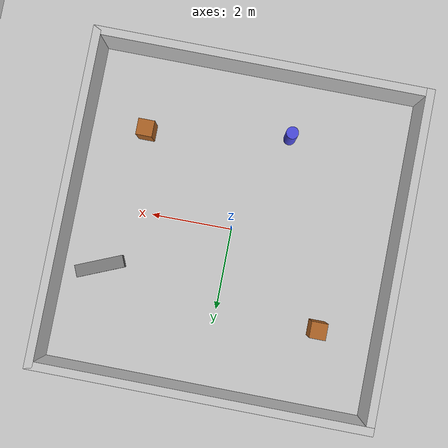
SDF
<sdf version="1.6">
 <world name="clean_world">
  <physics type="ode">
   <real_time_update_rate>1000.0</real_time_update_rate>
   <max_step_size>0.001</max_step_size>
   <real_time_factor>1</real_time_factor>
  </physics>
  <scene>
   <ambient>0.4 0.4 0.4 1</ambient>
   <background>0.53 0.81 0.92 1</background>
   <shadows>true</shadows>
   <fog>
    <color>0.9 0.9 0.9 1</color>
    <type>linear</type>
    <start>10</start>
    <end>40</end>
    <density>0.02</density>
   </fog>
  </scene>
  <light name="sun" type="directional">
   <pose>0 0 15 0 0 0</pose>
   <diffuse>1.0 0.95 0.8 1</diffuse>
   <specular>0.3 0.3 0.3 1</specular>
   <direction>-0.4 0.2 -0.9</direction>
   <attenuation>
    <range>1000</range>
    <constant>0.9</constant>
    <linear>0.01</linear>
    <quadratic>0.001</quadratic>
   </attenuation>
  </light>
  <light name="ambient_fill" type="directional">
   <cast_shadows>false</cast_shadows>
   <pose>0 0 10 0 0 0</pose>
   <diffuse>0.3 0.35 0.4 1</diffuse>
   <specular>0.0 0.0 0.0 1</specular>
   <direction>0.4 -0.2 -0.8</direction>
  </light>
  <include><uri>model://ground_plane</uri></include>
  <model name="wall_north">
   <static>true</static>
   <pose>0 4 0.5 0 0 0</pose>
   <link name="link">
    <collision name="col"><geometry><box><size>8.2 0.2 1</size></box></geometry></collision>
    <visual name="vis">
     <geometry><box><size>8.2 0.2 1</size></box></geometry>
     <material><ambient>0.7 0.7 0.7 1</ambient><diffuse>0.8 0.8 0.8 1</diffuse></material>
    </visual>
   </link>
  </model>
  <model name="wall_south">
   <static>true</static>
   <pose>0 -4 0.5 0 0 0</pose>
   <link name="link">
    <collision name="col"><geometry><box><size>8.2 0.2 1</size></box></geometry></collision>
    <visual name="vis">
     <geometry><box><size>8.2 0.2 1</size></box></geometry>
     <material><ambient>0.7 0.7 0.7 1</ambient><diffuse>0.8 0.8 0.8 1</diffuse></material>
    </visual>
   </link>
  </model>
  <model name="wall_east">
   <static>true</static>
   <pose>4 0 0.5 0 0 0</pose>
   <link name="link">
    <collision name="col"><geometry><box><size>0.2 8.2 1</size></box></geometry></collision>
    <visual name="vis">
     <geometry><box><size>0.2 8.2 1</size></box></geometry>
     <material><ambient>0.7 0.7 0.7 1</ambient><diffuse>0.8 0.8 0.8 1</diffuse></material>
    </visual>
   </link>
  </model>
  <model name="wall_west">
   <static>true</static>
   <pose>-4 0 0.5 0 0 0</pose>
   <link name="link">
    <collision name="col"><geometry><box><size>0.2 8.2 1</size></box></geometry></collision>
    <visual name="vis">
     <geometry><box><size>0.2 8.2 1</size></box></geometry>
     <material><ambient>0.7 0.7 0.7 1</ambient><diffuse>0.8 0.8 0.8 1</diffuse></material>
    </visual>
   </link>
  </model>
  <model name="pillar_a">
   <static>true</static>
   <pose>2.5 -2.0 0.3 0 0 0</pose>
   <link name="link">
    <collision name="col"><geometry><box><size>0.4 0.4 0.6</size></box></geometry></collision>
    <visual name="vis">
     <geometry><box><size>0.4 0.4 0.6</size></box></geometry>
     <material><ambient>0.6 0.3 0.1 1</ambient><diffuse>0.7 0.4 0.15 1</diffuse></material>
    </visual>
   </link>
  </model>
  <model name="pillar_b">
   <static>true</static>
   <pose>-2.5 2.0 0.3 0 0 0</pose>
   <link name="link">
    <collision name="col"><geometry><box><size>0.4 0.4 0.6</size></box></geometry></collision>
    <visual name="vis">
     <geometry><box><size>0.4 0.4 0.6</size></box></geometry>
     <material><ambient>0.6 0.3 0.1 1</ambient><diffuse>0.7 0.4 0.15 1</diffuse></material>
    </visual>
   </link>
  </model>
  <model name="post_1">
   <static>true</static>
   <pose>-1.0 -2.5 0.4 0 0 0</pose>
   <link name="link">
    <collision name="col">
     <geometry><cylinder><radius>0.15</radius><length>0.8</length></cylinder></geometry>
    </collision>
    <visual name="vis">
     <geometry><cylinder><radius>0.15</radius><length>0.8</length></cylinder></geometry>
     <material><ambient>0.2 0.2 0.7 1</ambient><diffuse>0.3 0.3 0.9 1</diffuse></material>
    </visual>
   </link>
  </model>
  <model name="shelf">
   <static>true</static>
   <pose>3.0 1.5 0.1 0 0 0.4</pose>
   <link name="link">
    <collision name="col"><geometry><box><size>1.2 0.3 0.2</size></box></geometry></collision>
    <visual name="vis">
     <geometry><box><size>1.2 0.3 0.2</size></box></geometry>
     <material><ambient>0.4 0.4 0.4 1</ambient><diffuse>0.5 0.5 0.5 1</diffuse></material>
    </visual>
   </link>
  </model>
 </world>
</sdf>
